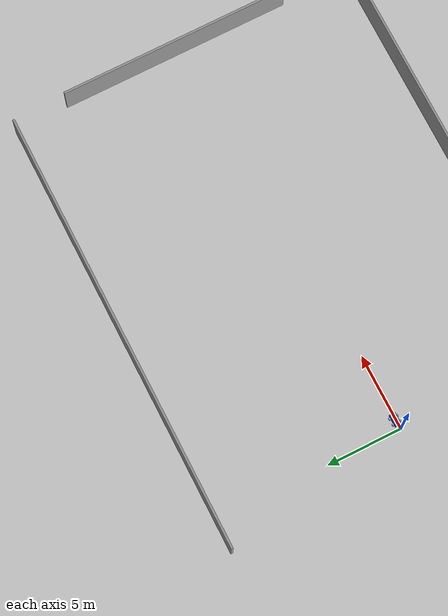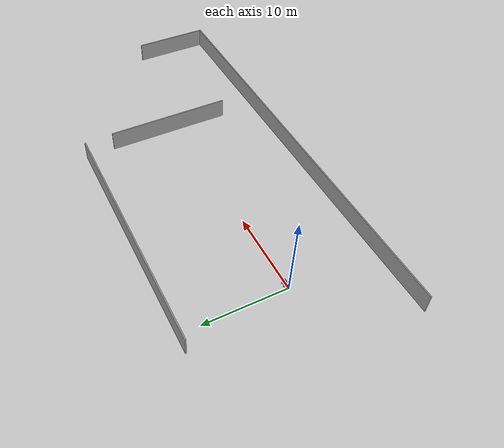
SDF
<sdf version="1.7">
 <world name="default">
  <light name="sun" type="directional">
   <pose>0 0 10 0 -0 0</pose>
   <diffuse>0.8 0.8 0.8 1</diffuse>
   <specular>0.2 0.2 0.2 1</specular>
   <attenuation>
    <range>1000</range>
    <constant>0.9</constant>
    <linear>0.01</linear>
    <quadratic>0.001</quadratic>
   </attenuation>
   <direction>-0.5 0.1 -0.9</direction>
   <spot><inner_angle>0</inner_angle><outer_angle>0</outer_angle><falloff>0</falloff></spot>
  </light>
  <model name="ground_plane">
   <static>1</static>
   <link name="link">
    <collision name="collision">
     <geometry><plane><normal>0 0 1</normal><size>100 100</size></plane></geometry>
     <surface>
      <contact><collide_bitmask>65535</collide_bitmask></contact>
      <friction><ode><mu>100</mu><mu2>50</mu2></ode></friction>
     </surface>
    </collision>
    <visual name="visual">
     <cast_shadows>0</cast_shadows>
     <geometry><plane><normal>0 0 1</normal><size>100 100</size></plane></geometry>
     <material>
      <script><uri>file://media/materials/scripts/gazebo.material</uri><name>Gazebo/Grey</name></script>
     </material>
    </visual>
   </link>
  </model>
  <gravity>0 0 -9.8</gravity>
  <magnetic_field>6e-06 2.3e-05 -4.2e-05</magnetic_field>
  <atmosphere type="adiabatic"/>
  <physics type="ode">
   <max_step_size>0.001</max_step_size>
   <real_time_factor>1</real_time_factor>
   <real_time_update_rate>1000</real_time_update_rate>
  </physics>
  <scene><ambient>0.4 0.4 0.4 1</ambient><background>0.7 0.7 0.7 1</background><shadows>1</shadows></scene>
  <audio><device>default</device></audio>
  <spherical_coordinates>
   <surface_model>EARTH_WGS84</surface_model>
   <latitude_deg>0</latitude_deg>
   <longitude_deg>0</longitude_deg>
   <elevation>0</elevation>
   <heading_deg>0</heading_deg>
  </spherical_coordinates>
  <model name="beer_2">
   <link name="link">
    <pose>0 0 0.115 0 -0 0</pose>
    <inertial>
     <mass>0.39</mass>
     <inertia><ixx>0.00058</ixx><ixy>0</ixy><ixz>0</ixz><iyy>0.00058</iyy><iyz>0</iyz><izz>0.00019</izz></inertia>
    </inertial>
    <collision name="collision">
     <geometry><cylinder><radius>0.055</radius><length>0.23</length></cylinder></geometry>
    </collision>
    <visual name="visual">
     <geometry><cylinder><radius>0.055</radius><length>0.23</length></cylinder></geometry>
     <material>
      <script>
       <uri>model://beer/materials/scripts</uri>
       <uri>model://beer/materials/textures</uri>
       <name>Beer/Diffuse</name>
      </script>
     </material>
    </visual>
   </link>
   <pose>1055.71 73.9426 0.054972 1.57066 0.365427 -3.08806</pose>
  </model>
  <model name="test_world.world">
   <pose>-3625.96 611.594 0 0 -0 0</pose>
   <link name="Wall_11">
    <collision name="Wall_11_Collision">
     <geometry><box><size>15.25 0.15 2.5</size></box></geometry>
     <pose>0 0 1.25 0 -0 0</pose>
    </collision>
    <visual name="Wall_11_Visual">
     <pose>0 0 1.25 0 -0 0</pose>
     <geometry><box><size>15.25 0.15 2.5</size></box></geometry>
     <material>
      <script><uri>file://media/materials/scripts/gazebo.material</uri><name>Gazebo/Grey</name></script>
      <ambient>1 1 1 1</ambient>
     </material>
     <meta><layer>0</layer></meta>
    </visual>
    <pose>3653.53 -610.26 0 0 -0 -1.5708</pose>
   </link>
   <link name="Wall_14">
    <collision name="Wall_14_Collision">
     <geometry><box><size>29.5 0.15 2.5</size></box></geometry>
     <pose>0 0 1.25 0 -0 0</pose>
    </collision>
    <visual name="Wall_14_Visual">
     <pose>0 0 1.25 0 -0 0</pose>
     <geometry><box><size>29.5 0.15 2.5</size></box></geometry>
     <material>
      <script><uri>file://media/materials/scripts/gazebo.material</uri><name>Gazebo/Grey</name></script>
      <ambient>1 1 1 1</ambient>
     </material>
     <meta><layer>0</layer></meta>
    </visual>
    <pose>3638.64 -599.11 0 0 -0 0</pose>
   </link>
   <link name="Wall_4">
    <collision name="Wall_4_Collision">
     <geometry><box><size>9782.25 0.15 2.5</size></box></geometry>
     <pose>0 0 1.25 0 -0 0</pose>
    </collision>
    <visual name="Wall_4_Visual">
     <pose>0 0 1.25 0 -0 0</pose>
     <geometry><box><size>9782.25 0.15 2.5</size></box></geometry>
     <material>
      <script><uri>file://media/materials/scripts/gazebo.material</uri><name>Gazebo/Grey</name></script>
      <ambient>1 1 1 1</ambient>
     </material>
     <meta><layer>0</layer></meta>
    </visual>
    <pose>-3653.53 0.000183 0 0 -0 -1.5708</pose>
   </link>
   <static>1</static>
  </model>
  <model name="trolley">
   <link name="body">
    <inertial>
     <pose>0.011748 0 0.155728 0 -0 0</pose>
     <mass>10.3</mass>
     <inertia>
      <ixx>0.620777</ixx>
      <ixy>0</ixy>
      <ixz>-0.0230369</ixz>
      <iyy>0.726476</iyy>
      <iyz>0</iyz>
      <izz>0.256445</izz>
     </inertia>
    </inertial>
    <collision name="body_collision">
     <pose>0 0 0.15 0 -0 0</pose>
     <geometry><box><size>0.8 0.4 0.3</size></box></geometry>
    </collision>
    <collision name="body_fixed_joint_lump__2d_lidar_link_collision_1">
     <pose>0.4 0 0.38 0 -0 0</pose>
     <geometry><cylinder><length>0.09</length><radius>0.08</radius></cylinder></geometry>
    </collision>
    <collision name="body_fixed_joint_lump__camera_link_collision_2">
     <pose>0.41 0 0.28 0 -0 0</pose>
     <geometry><box><size>0.02 0.08 0.06</size></box></geometry>
    </collision>
    <visual name="body_visual">
     <pose>0 0 0.15 0 -0 0</pose>
     <geometry><box><size>0.8 0.4 0.3</size></box></geometry>
     <material>
      <script><name>Gazebo/Blue</name><uri>file://media/materials/scripts/gazebo.material</uri></script>
     </material>
    </visual>
    <visual name="body_fixed_joint_lump__2d_lidar_link_visual_1">
     <pose>0.4 0 0.335 0 -0 0</pose>
     <geometry><cylinder><length>0.03</length><radius>0.05</radius></cylinder></geometry>
     <material>
      <script><name>Gazebo/Red</name><uri>file://media/materials/scripts/gazebo.material</uri></script>
     </material>
    </visual>
    <visual name="body_fixed_joint_lump__camera_link_visual_2">
     <pose>0.41 0 0.28 0 -0 0</pose>
     <geometry><box><size>0.02 0.08 0.06</size></box></geometry>
     <material>
      <script><name>Gazebo/Red</name><uri>file://media/materials/scripts/gazebo.material</uri></script>
     </material>
    </visual>
    <sensor name="laser" type="ray">
     <visualize>1</visualize>
     <update_rate>20</update_rate>
     <ray>
      <scan>
       <horizontal>
        <samples>360</samples>
        <min_angle>-3.14</min_angle>
        <max_angle>3.14</max_angle>
        <resolution>1</resolution>
       </horizontal>
       <vertical><samples>1</samples><min_angle>0</min_angle><max_angle>0</max_angle></vertical>
      </scan>
      <range><min>0</min><max>10</max></range>
     </ray>
     <plugin name="laser_controller" filename="libgazebo_ros_ray_sensor.so">
      <ros><argument>~/out:=scan</argument></ros>
      <output_type>sensor_msgs/LaserScan</output_type>
      <frame_name>2d_lidar_link</frame_name>
     </plugin>
     <pose>0.4 0 0.32 0 -0 0</pose>
    </sensor>
    <sensor name="camera_sensor" type="camera">
     <visualize>1</visualize>
     <update_rate>10</update_rate>
     <plugin name="plugin_name" filename="libgazebo_ros_camera.so"><frame_name>camera_link</frame_name></plugin>
     <pose>0.4 0 0.3 0 -0 0</pose>
     <camera>
      <horizontal_fov>1.047</horizontal_fov>
      <image><width>320</width><height>240</height></image>
      <clip><near>0.1</near><far>100</far></clip>
     </camera>
    </sensor>
   </link>
   <joint name="back_left_joint" type="revolute">
    <pose relative_to="body">-0.2 0.2 0 0 -0 0</pose>
    <parent>body</parent>
    <child>back_left_wheel</child>
    <axis>
     <xyz>0 1 0</xyz>
     <limit><lower>-1e+16</lower><upper>1e+16</upper></limit>
     <dynamics><spring_reference>0</spring_reference><spring_stiffness>0</spring_stiffness></dynamics>
    </axis>
   </joint>
   <link name="back_left_wheel">
    <pose relative_to="back_left_joint">0 0 0 0 -0 0</pose>
    <inertial>
     <pose>0 0.05 0 1.57 -0 0</pose>
     <mass>2</mass>
     <inertia>
      <ixx>0.00666667</ixx>
      <ixy>0</ixy>
      <ixz>0</ixz>
      <iyy>0.00666667</iyy>
      <iyz>0</iyz>
      <izz>0.01</izz>
     </inertia>
    </inertial>
    <collision name="back_left_wheel_collision">
     <pose>0 0.05 0 1.57 -0 0</pose>
     <geometry><cylinder><length>0.1</length><radius>0.1</radius></cylinder></geometry>
    </collision>
    <visual name="back_left_wheel_visual">
     <pose>0 0.05 0 1.57 -0 0</pose>
     <geometry><cylinder><length>0.1</length><radius>0.1</radius></cylinder></geometry>
    </visual>
   </link>
   <joint name="back_right_joint" type="revolute">
    <pose relative_to="body">-0.2 -0.2 0 0 -0 0</pose>
    <parent>body</parent>
    <child>back_right_wheel</child>
    <axis>
     <xyz>0 1 0</xyz>
     <limit><lower>-1e+16</lower><upper>1e+16</upper></limit>
     <dynamics><spring_reference>0</spring_reference><spring_stiffness>0</spring_stiffness></dynamics>
    </axis>
   </joint>
   <link name="back_right_wheel">
    <pose relative_to="back_right_joint">0 0 0 0 -0 0</pose>
    <inertial>
     <pose>0 -0.05 0 1.57 -0 0</pose>
     <mass>2</mass>
     <inertia>
      <ixx>0.00666667</ixx>
      <ixy>0</ixy>
      <ixz>0</ixz>
      <iyy>0.00666667</iyy>
      <iyz>0</iyz>
      <izz>0.01</izz>
     </inertia>
    </inertial>
    <collision name="back_right_wheel_collision">
     <pose>0 -0.05 0 1.57 -0 0</pose>
     <geometry><cylinder><length>0.1</length><radius>0.1</radius></cylinder></geometry>
    </collision>
    <visual name="back_right_wheel_visual">
     <pose>0 -0.05 0 1.57 -0 0</pose>
     <geometry><cylinder><length>0.1</length><radius>0.1</radius></cylinder></geometry>
    </visual>
   </link>
   <joint name="front_left_joint" type="revolute">
    <pose relative_to="body">0.2 0.2 0 0 -0 0</pose>
    <parent>body</parent>
    <child>front_left_wheel</child>
    <axis>
     <xyz>0 1 0</xyz>
     <limit><lower>-1e+16</lower><upper>1e+16</upper></limit>
     <dynamics><spring_reference>0</spring_reference><spring_stiffness>0</spring_stiffness></dynamics>
    </axis>
   </joint>
   <link name="front_left_wheel">
    <pose relative_to="front_left_joint">0 0 0 0 -0 0</pose>
    <inertial>
     <pose>0 0.05 0 1.57 -0 0</pose>
     <mass>2</mass>
     <inertia>
      <ixx>0.00666667</ixx>
      <ixy>0</ixy>
      <ixz>0</ixz>
      <iyy>0.00666667</iyy>
      <iyz>0</iyz>
      <izz>0.01</izz>
     </inertia>
    </inertial>
    <collision name="front_left_wheel_collision">
     <pose>0 0.05 0 1.57 -0 0</pose>
     <geometry><cylinder><length>0.1</length><radius>0.1</radius></cylinder></geometry>
    </collision>
    <visual name="front_left_wheel_visual">
     <pose>0 0.05 0 1.57 -0 0</pose>
     <geometry><cylinder><length>0.1</length><radius>0.1</radius></cylinder></geometry>
    </visual>
   </link>
   <joint name="front_right_joint" type="revolute">
    <pose relative_to="body">0.2 -0.2 0 0 -0 0</pose>
    <parent>body</parent>
    <child>front_right_wheel</child>
    <axis>
     <xyz>0 1 0</xyz>
     <limit><lower>-1e+16</lower><upper>1e+16</upper></limit>
     <dynamics><spring_reference>0</spring_reference><spring_stiffness>0</spring_stiffness></dynamics>
    </axis>
   </joint>
   <link name="front_right_wheel">
    <pose relative_to="front_right_joint">0 0 0 0 -0 0</pose>
    <inertial>
     <pose>0 -0.05 0 1.57 -0 0</pose>
     <mass>2</mass>
     <inertia>
      <ixx>0.00666667</ixx>
      <ixy>0</ixy>
      <ixz>0</ixz>
      <iyy>0.00666667</iyy>
      <iyz>0</iyz>
      <izz>0.01</izz>
     </inertia>
    </inertial>
    <collision name="front_right_wheel_collision">
     <pose>0 -0.05 0 1.57 -0 0</pose>
     <geometry><cylinder><length>0.1</length><radius>0.1</radius></cylinder></geometry>
    </collision>
    <visual name="front_right_wheel_visual">
     <pose>0 -0.05 0 1.57 -0 0</pose>
     <geometry><cylinder><length>0.1</length><radius>0.1</radius></cylinder></geometry>
    </visual>
   </link>
   <plugin name="gazebo_ros_diff_drive" filename="libgazebo_ros_diff_drive.so">
    <update_rate>50</update_rate>
    <right_joint>back_right_joint</right_joint>
    <left_joint>back_left_joint</left_joint>
    <wheel_separation>0.5</wheel_separation>
    <wheel_diameter>0.2</wheel_diameter>
    <publish_odom>1</publish_odom>
    <publish_odom_tf>1</publish_odom_tf>
    <publish_wheel_tf>1</publish_wheel_tf>
    <odometry_topic>odom</odometry_topic>
    <odometry_frame>odom</odometry_frame>
    <robot_base_frame>body</robot_base_frame>
   </plugin>
   <static>0</static>
   <plugin name="gazebo_ros_diff_drive_front" filename="libgazebo_ros_diff_drive.so">
    <update_rate>50</update_rate>
    <right_joint>front_right_joint</right_joint>
    <left_joint>front_left_joint</left_joint>
    <wheel_separation>0.5</wheel_separation>
    <wheel_diameter>0.2</wheel_diameter>
    <publish_odom>1</publish_odom>
    <publish_odom_tf>1</publish_odom_tf>
    <publish_wheel_tf>1</publish_wheel_tf>
    <odometry_topic>odom</odometry_topic>
    <odometry_frame>odom</odometry_frame>
    <robot_base_frame>body</robot_base_frame>
   </plugin>
   <pose>0.60528 0.083683 0.100011 -4.1e-05 3.1e-05 0.020208</pose>
  </model>
  <model name="test_world.world_clone">
   <pose>0.863069 -5.00609 0 0 -0 0</pose>
   <link name="Wall_11">
    <collision name="Wall_11_Collision">
     <geometry><box><size>15.25 0.15 2.5</size></box></geometry>
     <pose>0 0 1.25 0 -0 0</pose>
    </collision>
    <visual name="Wall_11_Visual">
     <pose>0 0 1.25 0 -0 0</pose>
     <geometry><box><size>15.25 0.15 2.5</size></box></geometry>
     <material>
      <script><uri>file://media/materials/scripts/gazebo.material</uri><name>Gazebo/Grey</name></script>
      <ambient>1 1 1 1</ambient>
     </material>
     <meta><layer>0</layer></meta>
    </visual>
    <pose>3653.53 -610.26 0 0 -0 -1.5708</pose>
   </link>
   <link name="Wall_14">
    <collision name="Wall_14_Collision">
     <geometry><box><size>29.5 0.15 2.5</size></box></geometry>
     <pose>0 0 1.25 0 -0 0</pose>
    </collision>
    <visual name="Wall_14_Visual">
     <pose>0 0 1.25 0 -0 0</pose>
     <geometry><box><size>29.5 0.15 2.5</size></box></geometry>
     <material>
      <script><uri>file://media/materials/scripts/gazebo.material</uri><name>Gazebo/Grey</name></script>
      <ambient>1 1 1 1</ambient>
     </material>
     <meta><layer>0</layer></meta>
    </visual>
    <pose>3638.64 -599.11 0 0 -0 0</pose>
   </link>
   <link name="Wall_4">
    <collision name="Wall_4_Collision">
     <geometry><box><size>9782.25 0.15 2.5</size></box></geometry>
     <pose>0 0 1.25 0 -0 0</pose>
    </collision>
    <visual name="Wall_4_Visual">
     <pose>0 0 1.25 0 -0 0</pose>
     <geometry><box><size>9782.25 0.15 2.5</size></box></geometry>
     <material>
      <script><uri>file://media/materials/scripts/gazebo.material</uri><name>Gazebo/Grey</name></script>
      <ambient>1 1 1 1</ambient>
     </material>
     <meta><layer>0</layer></meta>
    </visual>
    <pose>-3653.53 0.000183 0 0 -0 -1.5708</pose>
   </link>
   <static>1</static>
  </model>
  <model name="updated_world">
   <pose>17.9537 -5.43017 0 0 -0 0</pose>
   <link name="Wall_10">
    <collision name="Wall_10_Collision">
     <geometry><box><size>9.5 0.15 2.5</size></box></geometry>
     <pose>0 0 1.25 0 -0 0</pose>
    </collision>
    <visual name="Wall_10_Visual">
     <pose>0 0 1.25 0 -0 0</pose>
     <geometry><box><size>9.5 0.15 2.5</size></box></geometry>
     <material>
      <script><uri>file://media/materials/scripts/gazebo.material</uri><name>Gazebo/Grey</name></script>
      <ambient>1 1 1 1</ambient>
     </material>
     <meta><layer>0</layer></meta>
    </visual>
    <pose>26.05 -0.68017 0 0 -0 1.5708</pose>
   </link>
   <link name="Wall_9">
    <collision name="Wall_9_Collision">
     <geometry><box><size>52.25 0.15 2.5</size></box></geometry>
     <pose>0 0 1.25 0 -0 0</pose>
    </collision>
    <visual name="Wall_9_Visual">
     <pose>0 0 1.25 0 -0 0</pose>
     <geometry><box><size>52.25 0.15 2.5</size></box></geometry>
     <material>
      <script><uri>file://media/materials/scripts/gazebo.material</uri><name>Gazebo/Grey</name></script>
      <ambient>1 1 1 1</ambient>
     </material>
     <meta><layer>0</layer></meta>
    </visual>
    <pose>0 -5.35517 0 0 -0 0</pose>
   </link>
   <static>1</static>
  </model>
 </world>
</sdf>
